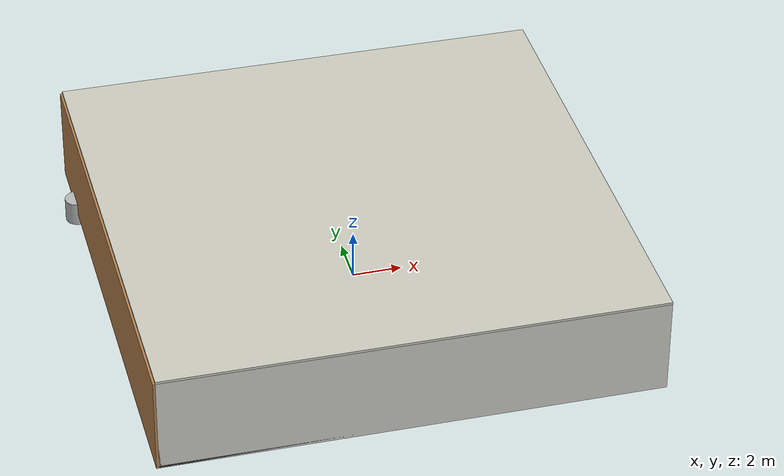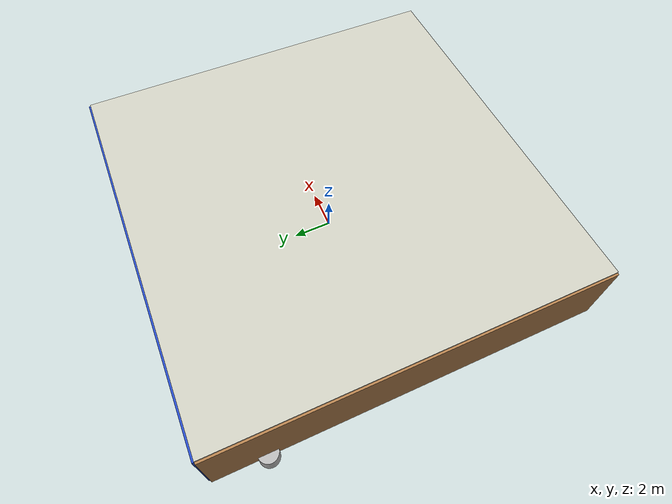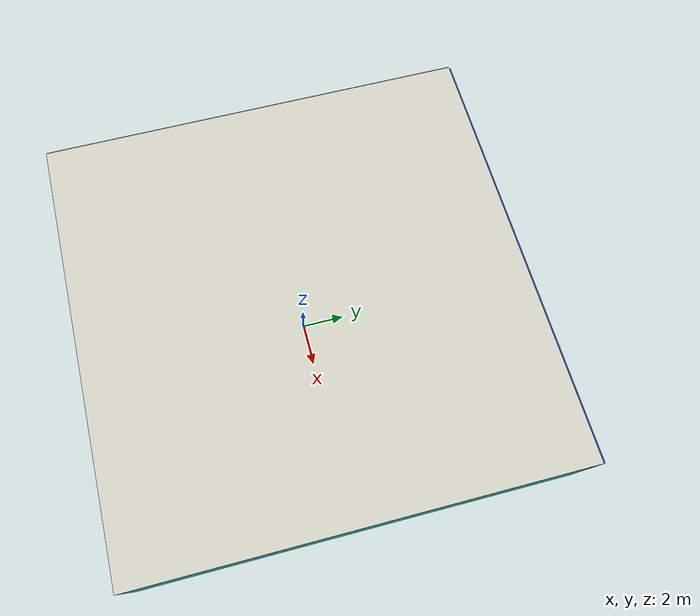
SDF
<sdf version="1.4">
 <world name="default">
  <physics type="ode">
   <max_step_size>0.001</max_step_size>
   <real_time_factor>1</real_time_factor>
   <real_time_update_rate>1000</real_time_update_rate>
   <gravity>0 0 -9.8</gravity>
  </physics>
  <scene><ambient>0.4 0.4 0.4 1</ambient><background>0.7 0.7 0.7 1</background><shadows>1</shadows></scene>
  <model name="Surrounding">
   <static>1</static>
   <link name="Ceiling">
    <collision name="Ceiling_Collision"><geometry><box><size>20 20 0.1</size></box></geometry></collision>
    <visual name="Ceiling_Visual">
     <geometry><box><size>20 20 0.1</size></box></geometry>
     <material>
      <script><uri>file://media/materials/scripts/gazebo.material</uri><name>Gazebo/PaintedWall</name></script>
     </material>
    </visual>
    <pose>0 0 4.05 0 0 0</pose>
   </link>
   <link name="Wall_South">
    <collision name="Wall_South_Collision">
     <geometry><box><size>20 0 4</size></box></geometry>
     <pose>0 0 2 0 -0 0</pose>
    </collision>
    <visual name="Wall_South_Visual">
     <pose>0 0 2 0 -0 0</pose>
     <geometry><box><size>20 0 4</size></box></geometry>
     <material>
      <script><uri>file://media/materials/scripts/gazebo.material</uri><name>Gazebo/CeilingTiled</name></script>
     </material>
    </visual>
    <velocity_decay><linear>0</linear><angular>0</angular></velocity_decay>
    <pose>0 -10 0 0 -0 0</pose>
   </link>
   <link name="Wall_East">
    <collision name="Wall_21_Collision">
     <geometry><box><size>20 0 4</size></box></geometry>
     <pose>0 0 2 0 -0 0</pose>
    </collision>
    <visual name="Wall_21_Visual">
     <pose>0 0 2 0 -0 0</pose>
     <geometry><box><size>20 0 4</size></box></geometry>
     <material>
      <script><uri>file://media/materials/scripts/gazebo.material</uri><name>Gazebo/TurquoiseGlow</name></script>
     </material>
    </visual>
    <velocity_decay><linear>0</linear><angular>0</angular></velocity_decay>
    <pose>10 0 0 0 -0 1.5708</pose>
   </link>
   <link name="Wall_North">
    <collision name="Wall_22_Collision">
     <geometry><box><size>20 0.2 4</size></box></geometry>
     <pose>0 0 2 0 -0 0</pose>
    </collision>
    <visual name="Wall_22_Visual">
     <pose>0 0 2 0 -0 0</pose>
     <geometry><box><size>20 0.2 4</size></box></geometry>
     <material>
      <script><uri>file://media/materials/scripts/gazebo.material</uri><name>Gazebo/Blue</name></script>
     </material>
    </visual>
    <velocity_decay><linear>0</linear><angular>0</angular></velocity_decay>
    <pose>0 10 0 0 -0 0</pose>
   </link>
   <link name="Wall_West">
    <collision name="Wall_23_Collision">
     <geometry><box><size>20 0.2 4</size></box></geometry>
     <pose>0 0 2 0 -0 0</pose>
    </collision>
    <visual name="Wall_23_Visual">
     <pose>0 0 2 0 -0 0</pose>
     <geometry><box><size>20 0.2 4</size></box></geometry>
     <material>
      <script><uri>file://media/materials/scripts/gazebo.material</uri><name>Gazebo/WoodFloor</name></script>
     </material>
    </visual>
    <velocity_decay><linear>0</linear><angular>0</angular></velocity_decay>
    <pose>-10 0 0 0 0 -1.5708</pose>
   </link>
   <link name="Ground_link">
    <collision name="collision">
     <pose>0 0 .05 0 -0 0</pose>
     <geometry><box><size>20 20 0.1</size></box></geometry>
    </collision>
    <visual name="visual">
     <pose>0 0 .05 0 -0 0</pose>
     <geometry><box><size>20 20 0.1</size></box></geometry>
     <material>
      <script><uri>file://media/materials/scripts/gazebo.material</uri><name>Gazebo/FlatBlack</name></script>
     </material>
    </visual>
   </link>
   <static>1</static>
  </model>
  <spherical_coordinates>
   <surface_model>EARTH_WGS84</surface_model>
   <latitude_deg>0</latitude_deg>
   <longitude_deg>0</longitude_deg>
   <elevation>0</elevation>
   <heading_deg>0</heading_deg>
  </spherical_coordinates>
  <light name="lightball_0" type="diffuse">
   <diffuse>0.8 0.8 0.8 1</diffuse>
   <specular>0.2 0.2 0.2 1</specular>
   <attenuation>
    <range>100</range>
    <constant>0.7</constant>
    <linear>0.01</linear>
    <quadratic>0.001</quadratic>
   </attenuation>
   <direction>-0.5 0.1 -0.9</direction>
   <pose>-2.6392138505 9.69186032662 3.41365929346 0 0 0</pose>
  </light>
  <light name="lightball_1" type="diffuse">
   <diffuse>0.8 0.8 0.8 1</diffuse>
   <specular>0.2 0.2 0.2 1</specular>
   <attenuation>
    <range>100</range>
    <constant>0.7</constant>
    <linear>0.01</linear>
    <quadratic>0.001</quadratic>
   </attenuation>
   <direction>-0.5 0.1 -0.9</direction>
   <pose>-6.60501846089 5.66055286221 2.40502729742 0 0 0</pose>
  </light>
  <light name="lightball_2" type="diffuse">
   <diffuse>0.8 0.8 0.8 1</diffuse>
   <specular>0.2 0.2 0.2 1</specular>
   <attenuation>
    <range>100</range>
    <constant>0.7</constant>
    <linear>0.01</linear>
    <quadratic>0.001</quadratic>
   </attenuation>
   <direction>-0.5 0.1 -0.9</direction>
   <pose>7.52809246822 1.76591205752 3.78674541864 0 0 0</pose>
  </light>
  <light name="lightball_3" type="diffuse">
   <diffuse>0.8 0.8 0.8 1</diffuse>
   <specular>0.2 0.2 0.2 1</specular>
   <attenuation>
    <range>100</range>
    <constant>0.7</constant>
    <linear>0.01</linear>
    <quadratic>0.001</quadratic>
   </attenuation>
   <direction>-0.5 0.1 -0.9</direction>
   <pose>-4.26004533726 -2.64593554935 3.60134780701 0 0 0</pose>
  </light>
  <light name="lightball_4" type="diffuse">
   <diffuse>0.8 0.8 0.8 1</diffuse>
   <specular>0.2 0.2 0.2 1</specular>
   <attenuation>
    <range>100</range>
    <constant>0.7</constant>
    <linear>0.01</linear>
    <quadratic>0.001</quadratic>
   </attenuation>
   <direction>-0.5 0.1 -0.9</direction>
   <pose>-0.0298436210713 -1.8671098503 1.56471715394 0 0 0</pose>
  </light>
  <light name="lightball_5" type="diffuse">
   <diffuse>0.8 0.8 0.8 1</diffuse>
   <specular>0.2 0.2 0.2 1</specular>
   <attenuation>
    <range>100</range>
    <constant>0.7</constant>
    <linear>0.01</linear>
    <quadratic>0.001</quadratic>
   </attenuation>
   <direction>-0.5 0.1 -0.9</direction>
   <pose>6.24387094792 -0.43959369486 3.63056659194 0 0 0</pose>
  </light>
  <light name="lightball_6" type="diffuse">
   <diffuse>0.8 0.8 0.8 1</diffuse>
   <specular>0.2 0.2 0.2 1</specular>
   <attenuation>
    <range>100</range>
    <constant>0.7</constant>
    <linear>0.01</linear>
    <quadratic>0.001</quadratic>
   </attenuation>
   <direction>-0.5 0.1 -0.9</direction>
   <pose>1.03981962199 8.17350288095 3.56006111033 0 0 0</pose>
  </light>
  <light name="lightball_7" type="diffuse">
   <diffuse>0.8 0.8 0.8 1</diffuse>
   <specular>0.2 0.2 0.2 1</specular>
   <attenuation>
    <range>100</range>
    <constant>0.7</constant>
    <linear>0.01</linear>
    <quadratic>0.001</quadratic>
   </attenuation>
   <direction>-0.5 0.1 -0.9</direction>
   <pose>9.37545559952 -1.17138769564 2.48024515682 0 0 0</pose>
  </light>
  <include>
   <uri>model://textured_shapes</uri>
   <pose>-8.57176590776 7.63781966066 0 0 0 1.7781741372</pose>
  </include>
  <include>
   <uri>model://construction_cone</uri>
   <pose>-5.1300502842 -2.05641002237 0 0 0 2.25510889988</pose>
  </include>
  <include>
   <uri>model://robocup_3Dsim_goal</uri>
   <pose>-2.24791790543 -6.38413486185 0 0 0 0.526355020782</pose>
  </include>
  <include>
   <uri>model://textured_shapes</uri>
   <pose>-1.92060193279 -1.70746684027 0 0 0 1.741581222</pose>
  </include>
  <include><uri>model://cabinet</uri><pose>7.27299764111 -8.30767679229 0 0 0 1.73470779426</pose></include>
  <include>
   <uri>model://construction_cone</uri>
   <pose>6.31388897345 4.00264097132 0 0 0 1.50758431519</pose>
  </include>
 </world>
</sdf>

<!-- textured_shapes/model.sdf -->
<sdf version="1.6">
  <model name="textured_shapes">
    <pose>0 0 0.5 0 0 0</pose>
    <link name="box">
      <pose>0 -1.5 0 0 0 0</pose>
      <collision name="collision">
        <geometry>
          <box>
            <size>1 1 1</size>
          </box>
        </geometry>
      </collision>
      <visual name="visual">
        <geometry>
          <box>
            <size>1 1 1</size>
          </box>
        </geometry>
        <material>
          <script>
            <uri>model://../model_source/models/textured_shapes/materials/scripts</uri>
            <uri>model://../model_source/models/textured_shapes/materials/textures</uri>
            <name>TexturedShape/Squares</name>
          </script>
        </material>
      </visual>
    </link>
    <link name="sphere">
      <collision name="collision">
        <geometry>
          <sphere>
            <radius>0.5</radius>
          </sphere>
        </geometry>
      </collision>
      <visual name="visual">
        <geometry>
          <sphere>
            <radius>0.5</radius>
          </sphere>
        </geometry>
        <material>
          <script>
            <uri>model://../model_source/models/textured_shapes/materials/scripts</uri>
            <uri>model://../model_source/models/textured_shapes/materials/textures</uri>
            <name>TexturedShape/Squares</name>
          </script>
        </material>
      </visual>
    </link>
    <link name="cylinder">
      <pose>0 1.5 0 0 0 0</pose>
      <collision name="collision">
        <geometry>
          <cylinder>
            <radius>0.5</radius>
            <length>1</length>
          </cylinder>
        </geometry>
      </collision>
      <visual name="visual">
        <geometry>
          <cylinder>
            <radius>0.5</radius>
            <length>1</length>
          </cylinder>
        </geometry>
        <material>
          <script>
            <uri>model://../model_source/models/textured_shapes/materials/scripts</uri>
            <uri>model://../model_source/models/textured_shapes/materials/textures</uri>
            <name>TexturedShape/Squares</name>
          </script>
        </material>
      </visual>
    </link>
  </model>
</sdf>

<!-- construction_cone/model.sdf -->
<sdf version="1.5">
  <model name="Construction Cone">
    <link name="link">
      <collision name="collision">
        <geometry>
          <mesh>
            <scale>10 10 10</scale>
            <uri>file://isr-testbed/construction_cone/meshes/construction_cone.dae</uri>
          </mesh>
        </geometry>
      </collision>
      <visual name="visual">
        <geometry>
          <mesh>
            <scale>10 10 10</scale>
            <uri>file://isr-testbed/construction_cone/meshes/construction_cone.dae</uri>
          </mesh>
        </geometry>
      </visual>
    </link>
  </model>
</sdf>

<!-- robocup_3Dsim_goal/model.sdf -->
<sdf version="1.5">
  <model name="robocup_3d_goal">
    <static>true</static>
    <link name="left_post">
      <pose>0 1.05 0.45 0 0 0</pose>
      <collision name="collision">
        <geometry>
          <cylinder>
            <radius>0.05</radius>
            <length>0.9</length>
          </cylinder>
        </geometry>
      </collision>
      <visual name="visual">
        <geometry>
          <cylinder>
            <radius>0.05</radius>
            <length>0.9</length>
          </cylinder>
        </geometry>
        <material>
          <script>
            <uri>file://media/materials/scripts/gazebo.material</uri>
            <name>Gazebo/ZincYellow</name>
          </script>
        </material>
      </visual>
    </link>
    <link name="left_support_horiz_lower">
      <pose>0.30 1.05 0.01 0 0 0</pose>
      <collision name="collision">
        <geometry>
          <box>
            <size>0.50 0.02 0.02</size>
          </box>
        </geometry>
      </collision>
      <visual name="visual">
        <geometry>
          <box>
            <size>0.50 0.02 0.02</size>
          </box>
        </geometry>
        <material>
          <script>
            <uri>file://media/materials/scripts/gazebo.material</uri>
            <name>Gazebo/White</name>
          </script>
        </material>
      </visual>
    </link>
    <link name="left_support_horiz_upper">
      <pose>0.30 1.05 0.79 0 0 0</pose>
      <collision name="collision">
        <geometry>
          <box>
            <size>0.50 0.02 0.02</size>
          </box>
        </geometry>
      </collision>
      <visual name="visual">
        <geometry>
          <box>
            <size>0.50 0.02 0.02</size>
          </box>
        </geometry>
        <material>
          <script>
            <uri>file://media/materials/scripts/gazebo.material</uri>
            <name>Gazebo/White</name>
          </script>
        </material>
      </visual>
    </link>
    <link name="left_support_vertical">
      <pose>0.56 1.05 0.4 0 1.5708 0</pose>
      <collision name="collision">
        <geometry>
          <box>
            <size>0.80 0.02 0.02</size>
          </box>
        </geometry>
      </collision>
      <visual name="visual">
        <geometry>
          <box>
            <size>0.80 0.02 0.02</size>
          </box>
        </geometry>
        <material>
          <script>
            <uri>file://media/materials/scripts/gazebo.material</uri>
            <name>Gazebo/White</name>
          </script>
        </material>
      </visual>
    </link>
    <link name="right_support_horiz_lower">
      <pose>0.30 -1.05 0.01 0 0 0</pose>
      <collision name="collision">
        <geometry>
          <box>
            <size>0.50 0.02 0.02</size>
          </box>
        </geometry>
      </collision>
      <visual name="visual">
        <geometry>
          <box>
            <size>0.50 0.02 0.02</size>
          </box>
        </geometry>
        <material>
          <script>
            <uri>file://media/materials/scripts/gazebo.material</uri>
            <name>Gazebo/White</name>
          </script>
        </material>
      </visual>
    </link>
    <link name="right_support_horiz_upper">
      <pose>0.30 -1.05 0.79 0 0 0</pose>
      <collision name="collision">
        <geometry>
          <box>
            <size>0.50 0.02 0.02</size>
          </box>
        </geometry>
      </collision>
      <visual name="visual">
        <geometry>
          <box>
            <size>0.50 0.02 0.02</size>
          </box>
        </geometry>
        <material>
          <script>
            <uri>file://media/materials/scripts/gazebo.material</uri>
            <name>Gazebo/White</name>
          </script>
        </material>
      </visual>
    </link>
    <link name="right_support_vertical">
      <pose>0.56 -1.05 0.4 0 1.5708 0</pose>
      <collision name="collision">
        <geometry>
          <box>
            <size>0.80 0.02 0.02</size>
          </box>
        </geometry>
      </collision>
      <visual name="visual">
        <geometry>
          <box>
            <size>0.80 0.02 0.02</size>
          </box>
        </geometry>
        <material>
          <script>
            <uri>file://media/materials/scripts/gazebo.material</uri>
            <name>Gazebo/White</name>
          </script>
        </material>
      </visual>
    </link>
    <link name="center_support_horiz_lower">
      <pose>0.56 0 0.01 0 1.5708 0</pose>
      <collision name="collision">
        <geometry>
          <box>
            <size>0.02 2.08 0.02</size>
          </box>
        </geometry>
      </collision>
      <visual name="visual">
        <geometry>
          <box>
            <size>0.02 2.08 0.02</size>
          </box>
        </geometry>
        <material>
          <script>
            <uri>file://media/materials/scripts/gazebo.material</uri>
            <name>Gazebo/White</name>
          </script>
        </material>
      </visual>
    </link>
    <link name="center_support_horiz_upper">
      <pose>0.56 0 0.79 0 1.5708 0</pose>
      <collision name="collision">
        <geometry>
          <box>
            <size>0.02 2.08 0.02</size>
          </box>
        </geometry>
      </collision>
      <visual name="visual">
        <geometry>
          <box>
            <size>0.02 2.08 0.02</size>
          </box>
        </geometry>
        <material>
          <script>
            <uri>file://media/materials/scripts/gazebo.material</uri>
            <name>Gazebo/White</name>
          </script>
        </material>
      </visual>
    </link>
    <link name="right_post">
      <pose>0 -1.05 0.45 0 0 0</pose>
      <collision name="collision">
        <geometry>
          <cylinder>
            <radius>0.05</radius>
            <length>0.9</length>
          </cylinder>
        </geometry>
      </collision>
      <visual name="visual">
        <geometry>
          <cylinder>
            <radius>0.05</radius>
            <length>0.9</length>
          </cylinder>
        </geometry>
        <material>
          <script>
            <uri>file://media/materials/scripts/gazebo.material</uri>
            <name>Gazebo/ZincYellow</name>
          </script>
        </material>
      </visual>
    </link>
    <link name="crossbar">
      <pose>0 0 0.85 1.57 1.57 0</pose>
      <collision name="collision">
        <geometry>
          <cylinder>
            <radius>0.05</radius>
            <length>2.0</length>
          </cylinder>
        </geometry>
      </collision>
      <visual name="visual">
        <geometry>
          <cylinder>
            <radius>0.05</radius>
            <length>2.0</length>
          </cylinder>
        </geometry>
        <material>
          <script>
            <uri>file://media/materials/scripts/gazebo.material</uri>
            <name>Gazebo/ZincYellow</name>
          </script>
        </material>
      </visual>
    </link>
    <link name="center_net">
      <pose>0.56 0 0.40 0 0 0</pose>
      <collision name="collision">
        <geometry>
          <box>
            <size>0.01 2.1 0.80</size>
          </box>
        </geometry>
      </collision>
      <visual name="visual">
        <geometry>
          <box>
            <size>0.01 2.1 0.80</size>
          </box>
        </geometry>
        <material>
          <script>
            <uri>model://../model_source/models/robocup09_spl_field/materials/scripts/</uri>
            <uri>model://../model_source/models/robocup09_spl_field/materials/textures/</uri>
            <name>RoboCup/Net</name>
          </script>
        </material>
      </visual>
    </link>
    <link name="left_net">
      <pose>0.30 1.05 0.40 0 0 0</pose>
      <collision name="collision">
        <geometry>
          <box>
            <size>0.50 0.01 0.76</size>
          </box>
        </geometry>
      </collision>
      <visual name="visual">
        <geometry>
          <box>
            <size>0.50 0.01 0.76</size>
          </box>
        </geometry>
        <material>
          <script>
            <uri>model://../model_source/models/robocup09_spl_field/materials/scripts/</uri>
            <uri>model://../model_source/models/robocup09_spl_field/materials/textures/</uri>
            <name>RoboCup/Net</name>
          </script>
        </material>
      </visual>
    </link>
    <link name="right_net">
      <pose>0.30 -1.05 0.40 0 0 0</pose>
      <collision name="collision">
        <geometry>
          <box>
            <size>0.50 0.01 0.76</size>
          </box>
        </geometry>
      </collision>
      <visual name="visual">
        <geometry>
          <box>
            <size>0.50 0.01 0.76</size>
          </box>
        </geometry>
        <material>
          <script>
            <uri>model://../model_source/models/robocup09_spl_field/materials/scripts/</uri>
            <uri>model://../model_source/models/robocup09_spl_field/materials/textures/</uri>
            <name>RoboCup/Net</name>
          </script>
        </material>
      </visual>
    </link>
  </model>
</sdf>

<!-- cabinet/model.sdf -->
<sdf version="1.5">
  <model name="cabinet">
    <static>true</static>
    <link name="cabinet_bottom_plate">
      <inertial>
        <pose>0 0 -1 0 0 0</pose>
        <inertia>
          <ixx>2.050000</ixx>
          <ixy>0</ixy>
          <ixz>0</ixz>
          <iyy>2.050000</iyy>
          <iyz>0</iyz>
          <izz>2.050000</izz>
        </inertia>
        <mass>25.000000</mass>
      </inertial>
      <collision name="cabinet_bottom_plate_geom">
        <pose>0 0 0.010000 0 0 0</pose>
        <geometry>
          <box>
            <size>0.450000 0.450000 0.020000</size>
          </box>
        </geometry>
      </collision>
      <visual name="cabinet_bottom_plate_geom_visual">
        <pose>0 0 0.010000 0 0 0</pose>
        <geometry>
          <box>
            <size>0.450000 0.450000 0.020000</size>
          </box>
        </geometry>
        <material>
          <script>
            <uri>model://media/materials/scripts/gazebo.material</uri>
            <name>Gazebo/Wood</name>
          </script>
        </material>
      </visual>
      <collision name="cabinet_bottom_plate_geom_cabinet_back_plate">
        <pose>0.235000 0 0.510000 0 0 0</pose>
        <geometry>
          <box>
            <size>0.020000 0.450000 1.020000</size>
          </box>
        </geometry>
      </collision>
      <visual name="cabinet_bottom_plate_geom_cabinet_back_plate_visual">
        <pose>0.235000 0 0.510000 0 0 0</pose>
        <geometry>
          <box>
            <size>0.020000 0.450000 1.020000</size>
          </box>
        </geometry>
        <material>
          <script>
            <uri>model://media/materials/scripts/gazebo.material</uri>
            <name>Gazebo/Wood</name>
          </script>
        </material>
      </visual>
      <collision name="cabinet_bottom_plate_geom_cabinet_left_plate">
        <pose>0 0.235000 0.510000 0 0 0</pose>
        <geometry>
          <box>
            <size>0.450000 0.020000 1.020000</size>
          </box>
        </geometry>
      </collision>
      <visual name="cabinet_bottom_plate_geom_cabinet_left_plate_visual">
        <pose>0 0.235000 0.510000 0 0 0</pose>
        <geometry>
          <box>
            <size>0.450000 0.020000 1.020000</size>
          </box>
        </geometry>
        <material>
          <script>
            <uri>model://media/materials/scripts/gazebo.material</uri>
            <name>Gazebo/Wood</name>
          </script>
        </material>
      </visual>
      <collision name="cabinet_bottom_plate_geom_cabinet_middle_plate">
        <pose>0 0 0.510000 0 0 0</pose>
        <geometry>
          <box>
            <size>0.450000 0.450000 0.020000</size>
          </box>
        </geometry>
      </collision>
      <visual name="cabinet_bottom_plate_geom_cabinet_middle_plate_visual">
        <pose>0 0 0.510000 0 0 0</pose>
        <geometry>
          <box>
            <size>0.450000 0.450000 0.020000</size>
          </box>
        </geometry>
        <material>
          <script>
            <uri>model://media/materials/scripts/gazebo.material</uri>
            <name>Gazebo/Wood</name>
          </script>
        </material>
      </visual>
      <collision name="cabinet_bottom_plate_geom_cabinet_right_plate">
        <pose>0 -0.235000 0.510000 0 0 0</pose>
        <geometry>
          <box>
            <size>0.450000 0.020000 1.020000</size>
          </box>
        </geometry>
      </collision>
      <visual name="cabinet_bottom_plate_geom_cabinet_right_plate_visual">
        <pose>0 -0.235000 0.510000 0 0 0</pose>
        <geometry>
          <box>
            <size>0.450000 0.020000 1.020000</size>
          </box>
        </geometry>
        <material>
          <script>
            <uri>model://media/materials/scripts/gazebo.material</uri>
            <name>Gazebo/Wood</name>
          </script>
        </material>
      </visual>
      <collision name="cabinet_bottom_plate_geom_cabinet_top_plate">
        <pose>0 0 1.010000 0 0 0</pose>
        <geometry>
          <box>
            <size>0.450000 0.450000 0.020000</size>
          </box>
        </geometry>
      </collision>
      <visual name="cabinet_bottom_plate_geom_cabinet_top_plate_visual">
        <pose>0 0 1.010000 0 0 0</pose>
        <geometry>
          <box>
            <size>0.450000 0.450000 0.020000</size>
          </box>
        </geometry>
        <material>
          <script>
            <uri>model://media/materials/scripts/gazebo.material</uri>
            <name>Gazebo/Wood</name>
          </script>
        </material>
      </visual>
    </link>
  </model>
</sdf>
